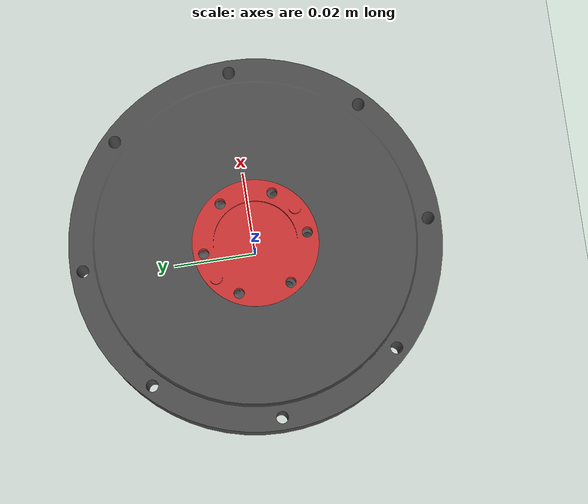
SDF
<?xml version="1.0" ?>
<sdf version="1.6">
    <world name="empty">
        <physics name="1ms" type="ignored">
            <max_step_size>0.001</max_step_size>
            <real_time_factor>1.0</real_time_factor>
        </physics>
        <plugin
            filename="gz-sim-physics-system"
            name="gz::sim::systems::Physics">
        </plugin>
        <plugin
            filename="gz-sim-user-commands-system"
            name="gz::sim::systems::UserCommands">
        </plugin>
        <plugin
            filename="gz-sim-scene-broadcaster-system"
            name="gz::sim::systems::SceneBroadcaster">
        </plugin>
        <plugin
            filename="gz-sim-contact-system"
            name="gz::sim::systems::Contact">
        </plugin>

        <gravity>0 0 -9.81</gravity>
        <atmosphere type="adiabatic" />

        <light type="directional" name="sun">
            <cast_shadows>true</cast_shadows>
            <pose>0 0 10 0 0 0</pose>
            <diffuse>0.8 0.8 0.8 1</diffuse>
            <specular>0.2 0.2 0.2 1</specular>
            <attenuation>
                <range>1000</range>
                <constant>0.9</constant>
                <linear>0.01</linear>
                <quadratic>0.001</quadratic>
            </attenuation>
            <direction>-0.5 0.1 -0.9</direction>
        </light>

        <model name="ground_plane">
            <static>true</static>
            <link name="link">
                <collision name="collision">
                <geometry>
                    <plane>
                        <normal>0 0 1</normal>
                        <size>100 100</size>
                    </plane>
                </geometry>
                </collision>
                <visual name="visual">
                <geometry>
                    <plane>
                        <normal>0 0 1</normal>
                        <size>100 100</size>
                    </plane>
                </geometry>
                <material>
                    <ambient>0.8 0.8 0.8 1</ambient>
                    <diffuse>0.8 0.8 0.8 1</diffuse>
                    <specular>0.8 0.8 0.8 1</specular>
                </material>
                </visual>
            </link>
        </model>

        <include>
            <uri>model://bldc_motor</uri>
            <pose>0 0 0 0 0 0</pose>
        </include>

  </world>
</sdf>

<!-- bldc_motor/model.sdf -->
<sdf version="1.9">
  <model name="bldc_motor">
    <plugin
      filename="gz-sim-joint-controller-system"
      name="gz::sim::systems::JointController">
      <joint_name>rotor_joint</joint_name>
      <topic>/rotor_joint/cmd_vel</topic>
      <initial_velocity>20.0</initial_velocity>
    </plugin>

    <plugin filename="bldc_motor_plugin" name="BLDCMotorPlugin">
      <joint_name>rotor_joint</joint_name>
      <resistance>0.5</resistance>
      <ke>0.02</ke>
      <kt>0.02</kt>

      <!-- publish state at 1 Hz -->
      <publish_rate_hz>1.0</publish_rate_hz>

      <!-- optional: run control loop at 200 Hz (or omit/0.0 to run every step) -->
      <control_rate_hz>0.0</control_rate_hz>

      <!-- if you want to command via ROS directly -->
      <use_ros_voltage_sub>true</use_ros_voltage_sub>

      <use_ros_voltage_sub>true</use_ros_voltage_sub>
    </plugin>

    <pose>0 0 0 0 0 0</pose>
    <static>false</static>

    <!-- STATOR (fixed) -->
    <link name="stator">
      <pose>0 0 0 0 0 0</pose>
      <inertial>
        <mass>0.5</mass>
        <inertia>
          <ixx>0.0005</ixx>
          <iyy>0.0005</iyy>
          <izz>0.0005</izz>
        </inertia>
      </inertial>
      <collision name="stator_collision">
        <geometry>
          <mesh>
            <uri>model://bldc_motor/meshes/stator.stl</uri>
            <scale>1 1 1</scale>
          </mesh>
        </geometry>
      </collision>
      <visual name="stator_visual">
        <geometry>
          <mesh>
            <uri>model://bldc_motor/meshes/stator.stl</uri>
            <scale>1 1 1</scale>
          </mesh>
        </geometry>
        <material>
          <ambient>0.2 0.2 0.2 1</ambient>
          <diffuse>0.3 0.3 0.3 1</diffuse>
        </material>
      </visual>
    </link>

    <!-- ROTOR (rotating) -->
    <link name="rotor">
      <pose>0 0 0 0 0 0</pose>
      <inertial>
        <mass>0.2</mass>
        <inertia>
          <ixx>0.0002</ixx>
          <iyy>0.0002</iyy>
          <izz>0.0002</izz>
        </inertia>
      </inertial>
      <collision name="rotor_collision">
        <geometry>
          <mesh>
            <uri>model://bldc_motor/meshes/rotor.stl</uri>
            <scale>1 1 1</scale>
          </mesh>
        </geometry>
      </collision>
      <visual name="rotor_visual">
        <geometry>
          <mesh>
            <uri>model://bldc_motor/meshes/rotor.stl</uri>
            <scale>1 1 1</scale>
          </mesh>
        </geometry>
        <material>
          <ambient>0.6 0.1 0.1 1</ambient>
          <diffuse>0.8 0.2 0.2 1</diffuse>
        </material>
      </visual>
    </link>

    <!-- REVOLUTE JOINT -->
    <joint name="rotor_joint" type="revolute">
      <parent>stator</parent>
      <child>rotor</child>
      <pose>0 0 0 0 0 0</pose>
      <axis>
        <xyz>0 0 1</xyz> <!-- rotation around Z -->
        <limit>
          <lower>-1e16</lower>
          <upper>1e16</upper>
        </limit>
        <dynamics>
          <damping>0.0001</damping>
          <friction>0.00005</friction>
        </dynamics>
      </axis>
    </joint>

  </model>
</sdf>
